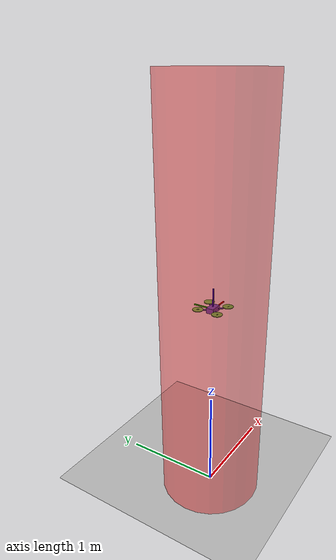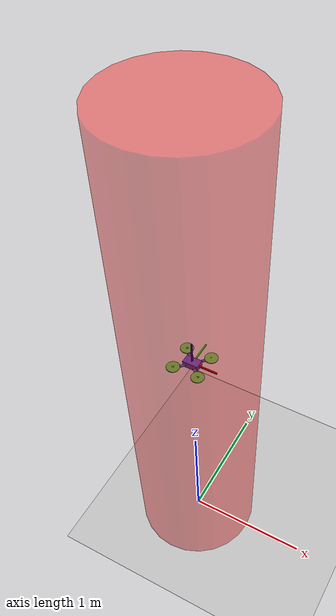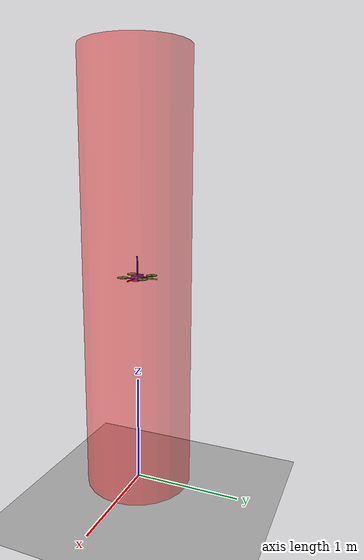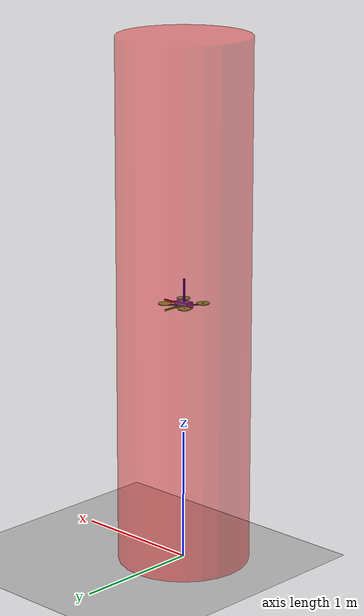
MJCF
<mujoco model="quadrotor0">
	<compiler inertiafromgeom="true" coordinate="local"/>
	<option	timestep="0.01" gravity="0 0 -9.81" density="1" viscosity="1e-5" />

	<!-- To prevent camera from cutting/seeing through objects -->
	<visual> <map znear="0.00005" /> </visual>

	<worldbody>
		<geom name="floor" pos="0 0 0" size="5 5 .2" type="plane"  conaffinity="1" rgba="0.75 0.75 0.75 1" condim="3"/>
		<body name="quadrotor" pos="0 0 2" >

			<camera name="onbodycam_0" mode="fixed" pos="0 0.06 0.05" xyaxes="1 0 0 0 0 1" fovy='35'/>

			<geom name="core" type="box" pos="0 0 0" quat = "1. 0. 0. 0" size="0.06 0.035 0.025"  rgba="0.3 0.3 0.8 1" mass = ".1"/>

			<site name="site_sens_0" type="box" pos="0 0.15 0" size="0.001 0.001 0.001" zaxis = "0. 1. 0." />

			<geom name="a00" type="box" pos=".071 0.071 0.0" size="0.05 0.01 0.0025"  quat = ".924 0.0 0.0 0.383" rgba="0.3 0.3 0.8 1" mass = ".025"/>
			<geom name="a10" type="box" pos=".071 -0.071 0.0" size="0.05 0.01 0.0025"  quat = ".383 0.0 0.0 0.924" rgba="0.3 0.3 0.8 1" mass = ".025"/>
			<geom name="a20" type="box" pos="-0.071 -0.071 0.0" size="0.05 0.01 0.0025"  quat = "-.383 0.0 0.0 0.924" rgba="0.3 0.3 0.8 1" mass = ".025"/>
			<geom name="a30" type="box" pos="-.071 0.071 0.0" size="0.05 0.01 0.0025"  quat = ".924 0.0 0.0 -0.383" rgba="0.3 0.3 0.8 1" mass = ".025"/>

			<joint name="root"   type="free" damping="0" armature="0" pos="0 0 0" />

			<!-- Motor sites to attach motor actuators -->
            <site name="motor0" type="cylinder" pos=" 0.1  0.1 0.01"  size="0.01 0.0025"  quat = "1.0 0.0 0.0 0." rgba="0.3 0.8 0.3 1"/>
            <site name="motor1" type="cylinder" pos=" 0.1 -0.1 0.01"  size="0.01 0.0025"  quat = "1.0 0.0 0.0 0." rgba="0.3 0.8 0.3 1"/>
            <site name="motor2" type="cylinder" pos="-0.1 -0.1 0.01"  size="0.01 0.0025"  quat = "1.0 0.0 0.0 0." rgba="0.3 0.8 0.3 1"/>
            <site name="motor3" type="cylinder" pos="-0.1  0.1 0.01"  size="0.01 0.0025"  quat = "1.0 0.0 0.0 0." rgba="0.3 0.8 0.3 1"/>

			<!-- Thruster geometries for collisions since site's are excluded from collision checking -->
            <geom name="thruster0" type="cylinder" pos=" 0.1  0.1  0.01" size="0.05 0.0025"  quat = "1.0 0.0 0.0 0." rgba="0.3 0.8 0.3 1" mass = ".025"/>
            <geom name="thruster1" type="cylinder" pos=" 0.1 -0.1  0.01" size="0.05 0.0025"  quat = "1.0 0.0 0.0 0." rgba="0.3 0.8 0.3 1" mass = ".025"/>
            <geom name="thruster2" type="cylinder" pos="-0.1 -0.1  0.01" size="0.05 0.0025"  quat = "1.0 0.0 0.0 0." rgba="0.3 0.8 0.3 1" mass = ".025"/>
            <geom name="thruster3" type="cylinder" pos="-0.1  0.1  0.01" size="0.05 0.0025"  quat = "1.0 0.0 0.0 0." rgba="0.3 0.8 0.3 1" mass = ".025"/>

            <!-- Visualization of the coordinate frame -->
			<site name="qcX" type="box" pos="0.1 0.0 0.0" size="0.1 0.005 0.005"  quat = " 1.000  0.0  0.0    0."     rgba="1 0 0 1" />
			<site name="qcY" type="box" pos="0.0 0.1 0.0" size="0.1 0.005 0.005"  quat = " 0.707  0.0  0.0    0.707"  rgba="0 1 0 1" />
			<site name="qcZ" type="box" pos="0.0 0.0 0.1" size="0.1 0.005 0.005"  quat = "-0.707  0.0  0.707  0."     rgba="0 0 1 1" />
		</body>

		<site name="goal_site" type="cylinder" pos="0 0 2" size="0.5 2" rgba="1 0 0 0.4"/>

		<light cutoff="100" diffuse="1 1 1" dir="0 0 -1" directional="true" exponent="1" pos="0 0 10" specular=".1 .1 .1" />
		<light cutoff="100" diffuse="1 1 1" dir="0 0 1" directional="true" exponent="1" pos="0 0 0.25" specular=".1 .1 .1" />

	</worldbody>

	<sensor> <rangefinder name="sens_0" site="site_sens_0" /> </sensor>

    <actuator>
        <motor ctrllimited="true" ctrlrange="0.0 1.0" gear="0  0. 1. 0. 0. -0.1" site="motor0"/>
        <motor ctrllimited="true" ctrlrange="0.0 1.0" gear="0  0. 1. 0. 0.  0.1" site="motor1"/>
        <motor ctrllimited="true" ctrlrange="0.0 1.0" gear="0  0. 1. 0. 0. -0.1" site="motor2"/>
        <motor ctrllimited="true" ctrlrange="0.0 1.0" gear="0  0. 1. 0. 0.  0.1" site="motor3"/>
	</actuator>
</mujoco>
